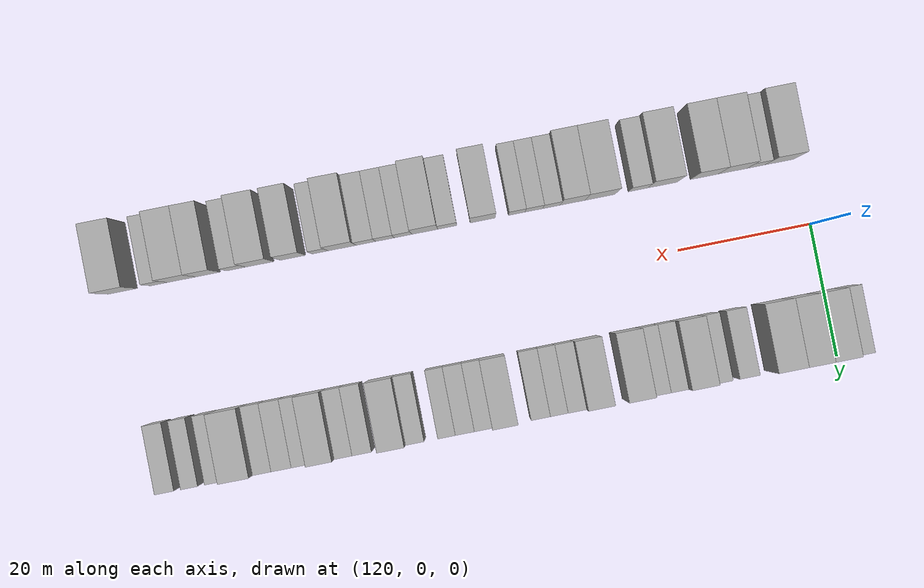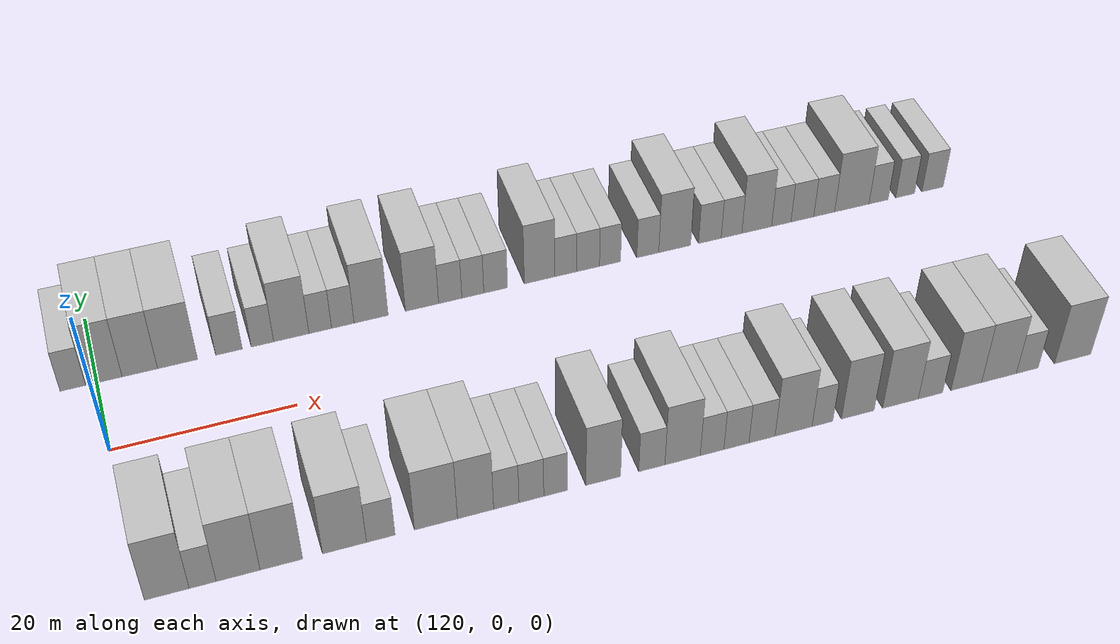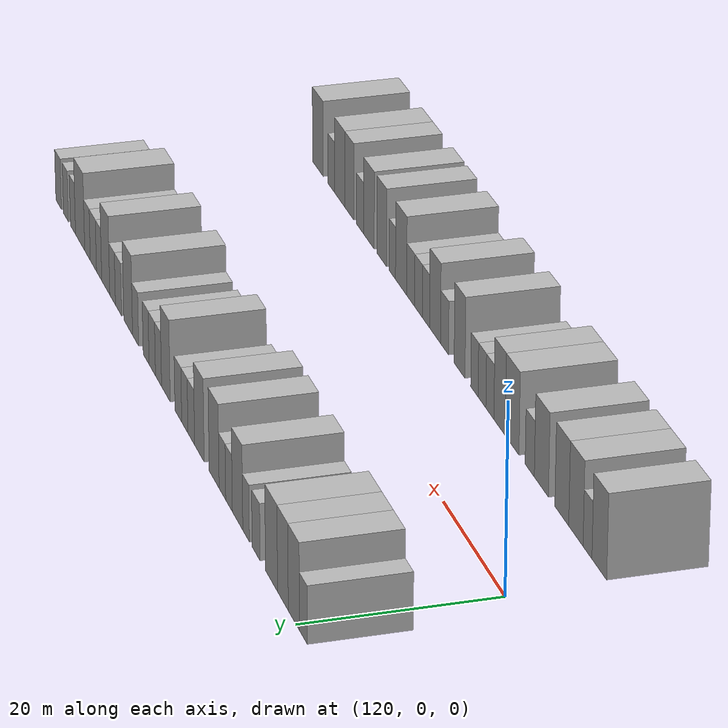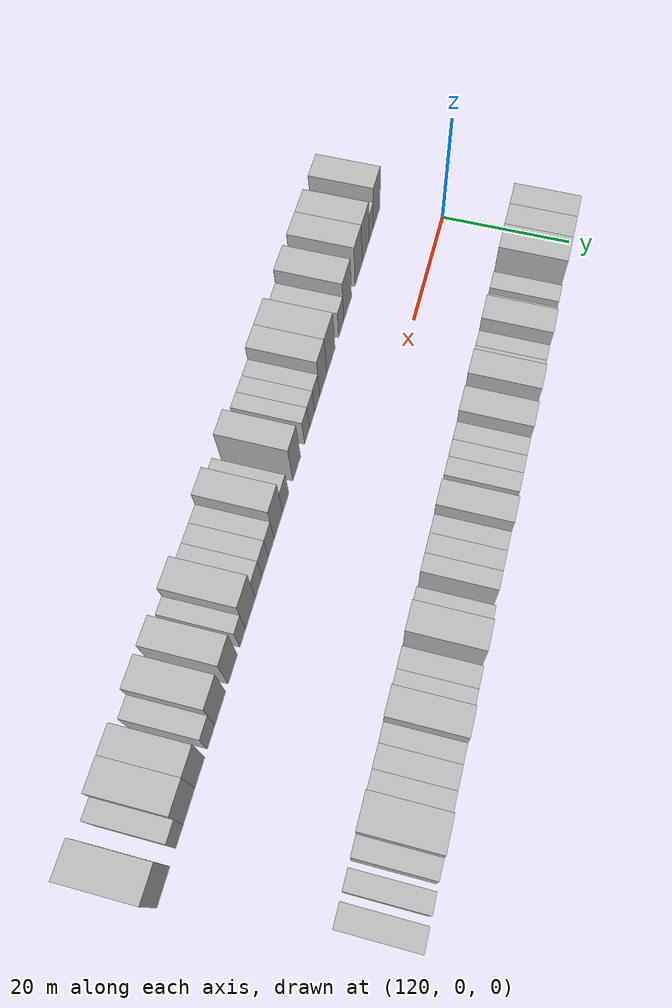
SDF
<sdf version="1.6">
 <world name="default">
  <model name="building_31">
   <static>1</static>
   <pose>117.4507 15.0000 0 0.000000 0.000000 1.570796</pose>
   <link name="link">
    <pose>0 0 3.00 0 0 0</pose>
    <collision name="collision"><geometry><box><size>10.0000 2.7305 6.0000</size></box></geometry></collision>
    <visual name="visual">
     <cast_shadows>0</cast_shadows>
     <geometry><box><size>10.0000 2.7305 6.0000</size></box></geometry>
     <material>
      <script>
       <uri>model://HANNAS_wall/materials/scripts</uri>
       <uri>model://HANNAS_wall/materials/textures</uri>
       <name>vrc/HANNAS_wall</name>
      </script>
     </material>
    </visual>
   </link>
  </model>
  <model name="building_32">
   <static>1</static>
   <pose>120.7867 15.0000 0 0.000000 0.000000 1.570796</pose>
   <link name="link">
    <pose>0 0 4.50 0 0 0</pose>
    <collision name="collision"><geometry><box><size>10.0000 3.9415 9.0000</size></box></geometry></collision>
    <visual name="visual">
     <cast_shadows>0</cast_shadows>
     <geometry><box><size>10.0000 3.9415 9.0000</size></box></geometry>
     <material>
      <script>
       <uri>model://HANNAS_wall/materials/scripts</uri>
       <uri>model://HANNAS_wall/materials/textures</uri>
       <name>vrc/HANNAS_wall</name>
      </script>
     </material>
    </visual>
   </link>
  </model>
  <model name="building_33">
   <static>1</static>
   <pose>124.6819 15.0000 0 0.000000 0.000000 1.570796</pose>
   <link name="link">
    <pose>0 0 4.50 0 0 0</pose>
    <collision name="collision"><geometry><box><size>10.0000 3.8489 9.0000</size></box></geometry></collision>
    <visual name="visual">
     <cast_shadows>0</cast_shadows>
     <geometry><box><size>10.0000 3.8489 9.0000</size></box></geometry>
     <material>
      <script>
       <uri>model://HANNAS_wall/materials/scripts</uri>
       <uri>model://HANNAS_wall/materials/textures</uri>
       <name>vrc/HANNAS_wall</name>
      </script>
     </material>
    </visual>
   </link>
  </model>
  <model name="building_34">
   <static>1</static>
   <pose>128.7969 15.0000 0 0.000000 0.000000 1.570796</pose>
   <link name="link">
    <pose>0 0 4.50 0 0 0</pose>
    <collision name="collision"><geometry><box><size>10.0000 4.3810 9.0000</size></box></geometry></collision>
    <visual name="visual">
     <cast_shadows>0</cast_shadows>
     <geometry><box><size>10.0000 4.3810 9.0000</size></box></geometry>
     <material>
      <script>
       <uri>model://HANNAS_wall/materials/scripts</uri>
       <uri>model://HANNAS_wall/materials/textures</uri>
       <name>vrc/HANNAS_wall</name>
      </script>
     </material>
    </visual>
   </link>
  </model>
  <model name="building_35">
   <static>1</static>
   <pose>134.4684 15.0000 0 0.000000 0.000000 1.570796</pose>
   <link name="link">
    <pose>0 0 3.00 0 0 0</pose>
    <collision name="collision"><geometry><box><size>10.0000 2.9619 6.0000</size></box></geometry></collision>
    <visual name="visual">
     <cast_shadows>0</cast_shadows>
     <geometry><box><size>10.0000 2.9619 6.0000</size></box></geometry>
     <material>
      <script>
       <uri>model://HANNAS_wall/materials/scripts</uri>
       <uri>model://HANNAS_wall/materials/textures</uri>
       <name>vrc/HANNAS_wall</name>
      </script>
     </material>
    </visual>
   </link>
  </model>
  <model name="building_36">
   <static>1</static>
   <pose>138.2059 15.0000 0 0.000000 0.000000 1.570796</pose>
   <link name="link">
    <pose>0 0 3.00 0 0 0</pose>
    <collision name="collision"><geometry><box><size>10.0000 2.5131 6.0000</size></box></geometry></collision>
    <visual name="visual">
     <cast_shadows>0</cast_shadows>
     <geometry><box><size>10.0000 2.5131 6.0000</size></box></geometry>
     <material>
      <script>
       <uri>model://HANNAS_wall/materials/scripts</uri>
       <uri>model://HANNAS_wall/materials/textures</uri>
       <name>vrc/HANNAS_wall</name>
      </script>
     </material>
    </visual>
   </link>
  </model>
  <model name="building_37">
   <static>1</static>
   <pose>141.4573 15.0000 0 0.000000 0.000000 1.570796</pose>
   <link name="link">
    <pose>0 0 4.50 0 0 0</pose>
    <collision name="collision"><geometry><box><size>10.0000 3.9897 9.0000</size></box></geometry></collision>
    <visual name="visual">
     <cast_shadows>0</cast_shadows>
     <geometry><box><size>10.0000 3.9897 9.0000</size></box></geometry>
     <material>
      <script>
       <uri>model://HANNAS_wall/materials/scripts</uri>
       <uri>model://HANNAS_wall/materials/textures</uri>
       <name>vrc/HANNAS_wall</name>
      </script>
     </material>
    </visual>
   </link>
  </model>
  <model name="building_38">
   <static>1</static>
   <pose>144.7372 15.0000 0 0.000000 0.000000 1.570796</pose>
   <link name="link">
    <pose>0 0 3.00 0 0 0</pose>
    <collision name="collision"><geometry><box><size>10.0000 2.5700 6.0000</size></box></geometry></collision>
    <visual name="visual">
     <cast_shadows>0</cast_shadows>
     <geometry><box><size>10.0000 2.5700 6.0000</size></box></geometry>
     <material>
      <script>
       <uri>model://HANNAS_wall/materials/scripts</uri>
       <uri>model://HANNAS_wall/materials/textures</uri>
       <name>vrc/HANNAS_wall</name>
      </script>
     </material>
    </visual>
   </link>
  </model>
  <model name="building_39">
   <static>1</static>
   <pose>147.3090 15.0000 0 0.000000 0.000000 1.570796</pose>
   <link name="link">
    <pose>0 0 3.00 0 0 0</pose>
    <collision name="collision"><geometry><box><size>10.0000 2.5736 6.0000</size></box></geometry></collision>
    <visual name="visual">
     <cast_shadows>0</cast_shadows>
     <geometry><box><size>10.0000 2.5736 6.0000</size></box></geometry>
     <material>
      <script>
       <uri>model://HANNAS_wall/materials/scripts</uri>
       <uri>model://HANNAS_wall/materials/textures</uri>
       <name>vrc/HANNAS_wall</name>
      </script>
     </material>
    </visual>
   </link>
  </model>
  <model name="building_40">
   <static>1</static>
   <pose>150.5536 15.0000 0 0.000000 0.000000 1.570796</pose>
   <link name="link">
    <pose>0 0 4.50 0 0 0</pose>
    <collision name="collision"><geometry><box><size>10.0000 3.9157 9.0000</size></box></geometry></collision>
    <visual name="visual">
     <cast_shadows>0</cast_shadows>
     <geometry><box><size>10.0000 3.9157 9.0000</size></box></geometry>
     <material>
      <script>
       <uri>model://HANNAS_wall/materials/scripts</uri>
       <uri>model://HANNAS_wall/materials/textures</uri>
       <name>vrc/HANNAS_wall</name>
      </script>
     </material>
    </visual>
   </link>
  </model>
  <model name="building_41">
   <static>1</static>
   <pose>156.4536 15.0000 0 0.000000 0.000000 1.570796</pose>
   <link name="link">
    <pose>0 0 4.50 0 0 0</pose>
    <collision name="collision"><geometry><box><size>10.0000 3.8843 9.0000</size></box></geometry></collision>
    <visual name="visual">
     <cast_shadows>0</cast_shadows>
     <geometry><box><size>10.0000 3.8843 9.0000</size></box></geometry>
     <material>
      <script>
       <uri>model://HANNAS_wall/materials/scripts</uri>
       <uri>model://HANNAS_wall/materials/textures</uri>
       <name>vrc/HANNAS_wall</name>
      </script>
     </material>
    </visual>
   </link>
  </model>
  <model name="building_42">
   <static>1</static>
   <pose>159.7617 15.0000 0 0.000000 0.000000 1.570796</pose>
   <link name="link">
    <pose>0 0 3.00 0 0 0</pose>
    <collision name="collision"><geometry><box><size>10.0000 2.7318 6.0000</size></box></geometry></collision>
    <visual name="visual">
     <cast_shadows>0</cast_shadows>
     <geometry><box><size>10.0000 2.7318 6.0000</size></box></geometry>
     <material>
      <script>
       <uri>model://HANNAS_wall/materials/scripts</uri>
       <uri>model://HANNAS_wall/materials/textures</uri>
       <name>vrc/HANNAS_wall</name>
      </script>
     </material>
    </visual>
   </link>
  </model>
  <model name="building_43">
   <static>1</static>
   <pose>162.4258 15.0000 0 0.000000 0.000000 1.570796</pose>
   <link name="link">
    <pose>0 0 3.00 0 0 0</pose>
    <collision name="collision"><geometry><box><size>10.0000 2.5965 6.0000</size></box></geometry></collision>
    <visual name="visual">
     <cast_shadows>0</cast_shadows>
     <geometry><box><size>10.0000 2.5965 6.0000</size></box></geometry>
     <material>
      <script>
       <uri>model://HANNAS_wall/materials/scripts</uri>
       <uri>model://HANNAS_wall/materials/textures</uri>
       <name>vrc/HANNAS_wall</name>
      </script>
     </material>
    </visual>
   </link>
  </model>
  <model name="building_44">
   <static>1</static>
   <pose>165.1306 15.0000 0 0.000000 0.000000 1.570796</pose>
   <link name="link">
    <pose>0 0 3.00 0 0 0</pose>
    <collision name="collision"><geometry><box><size>10.0000 2.8132 6.0000</size></box></geometry></collision>
    <visual name="visual">
     <cast_shadows>0</cast_shadows>
     <geometry><box><size>10.0000 2.8132 6.0000</size></box></geometry>
     <material>
      <script>
       <uri>model://HANNAS_wall/materials/scripts</uri>
       <uri>model://HANNAS_wall/materials/textures</uri>
       <name>vrc/HANNAS_wall</name>
      </script>
     </material>
    </visual>
   </link>
  </model>
  <model name="building_45">
   <static>1</static>
   <pose>170.3809 15.0000 0 0.000000 0.000000 1.570796</pose>
   <link name="link">
    <pose>0 0 4.50 0 0 0</pose>
    <collision name="collision"><geometry><box><size>10.0000 3.6875 9.0000</size></box></geometry></collision>
    <visual name="visual">
     <cast_shadows>0</cast_shadows>
     <geometry><box><size>10.0000 3.6875 9.0000</size></box></geometry>
     <material>
      <script>
       <uri>model://HANNAS_wall/materials/scripts</uri>
       <uri>model://HANNAS_wall/materials/textures</uri>
       <name>vrc/HANNAS_wall</name>
      </script>
     </material>
    </visual>
   </link>
  </model>
  <model name="building_46">
   <static>1</static>
   <pose>173.5392 15.0000 0 0.000000 0.000000 1.570796</pose>
   <link name="link">
    <pose>0 0 3.00 0 0 0</pose>
    <collision name="collision"><geometry><box><size>10.0000 2.6291 6.0000</size></box></geometry></collision>
    <visual name="visual">
     <cast_shadows>0</cast_shadows>
     <geometry><box><size>10.0000 2.6291 6.0000</size></box></geometry>
     <material>
      <script>
       <uri>model://HANNAS_wall/materials/scripts</uri>
       <uri>model://HANNAS_wall/materials/textures</uri>
       <name>vrc/HANNAS_wall</name>
      </script>
     </material>
    </visual>
   </link>
  </model>
  <model name="building_47">
   <static>1</static>
   <pose>176.2488 15.0000 0 0.000000 0.000000 1.570796</pose>
   <link name="link">
    <pose>0 0 3.00 0 0 0</pose>
    <collision name="collision"><geometry><box><size>10.0000 2.7902 6.0000</size></box></geometry></collision>
    <visual name="visual">
     <cast_shadows>0</cast_shadows>
     <geometry><box><size>10.0000 2.7902 6.0000</size></box></geometry>
     <material>
      <script>
       <uri>model://HANNAS_wall/materials/scripts</uri>
       <uri>model://HANNAS_wall/materials/textures</uri>
       <name>vrc/HANNAS_wall</name>
      </script>
     </material>
    </visual>
   </link>
  </model>
  <model name="building_48">
   <static>1</static>
   <pose>178.9324 15.0000 0 0.000000 0.000000 1.570796</pose>
   <link name="link">
    <pose>0 0 3.00 0 0 0</pose>
    <collision name="collision"><geometry><box><size>10.0000 2.5769 6.0000</size></box></geometry></collision>
    <visual name="visual">
     <cast_shadows>0</cast_shadows>
     <geometry><box><size>10.0000 2.5769 6.0000</size></box></geometry>
     <material>
      <script>
       <uri>model://HANNAS_wall/materials/scripts</uri>
       <uri>model://HANNAS_wall/materials/textures</uri>
       <name>vrc/HANNAS_wall</name>
      </script>
     </material>
    </visual>
   </link>
  </model>
  <model name="building_49">
   <static>1</static>
   <pose>183.5829 15.0000 0 0.000000 0.000000 1.570796</pose>
   <link name="link">
    <pose>0 0 3.00 0 0 0</pose>
    <collision name="collision"><geometry><box><size>10.0000 2.7243 6.0000</size></box></geometry></collision>
    <visual name="visual">
     <cast_shadows>0</cast_shadows>
     <geometry><box><size>10.0000 2.7243 6.0000</size></box></geometry>
     <material>
      <script>
       <uri>model://HANNAS_wall/materials/scripts</uri>
       <uri>model://HANNAS_wall/materials/textures</uri>
       <name>vrc/HANNAS_wall</name>
      </script>
     </material>
    </visual>
   </link>
  </model>
  <model name="building_50">
   <static>1</static>
   <pose>186.9273 15.0000 0 0.000000 0.000000 1.570796</pose>
   <link name="link">
    <pose>0 0 4.50 0 0 0</pose>
    <collision name="collision"><geometry><box><size>10.0000 3.9645 9.0000</size></box></geometry></collision>
    <visual name="visual">
     <cast_shadows>0</cast_shadows>
     <geometry><box><size>10.0000 3.9645 9.0000</size></box></geometry>
     <material>
      <script>
       <uri>model://HANNAS_wall/materials/scripts</uri>
       <uri>model://HANNAS_wall/materials/textures</uri>
       <name>vrc/HANNAS_wall</name>
      </script>
     </material>
    </visual>
   </link>
  </model>
  <model name="building_51">
   <static>1</static>
   <pose>191.3352 15.0000 0 0.000000 0.000000 1.570796</pose>
   <link name="link">
    <pose>0 0 3.00 0 0 0</pose>
    <collision name="collision"><geometry><box><size>10.0000 2.8514 6.0000</size></box></geometry></collision>
    <visual name="visual">
     <cast_shadows>0</cast_shadows>
     <geometry><box><size>10.0000 2.8514 6.0000</size></box></geometry>
     <material>
      <script>
       <uri>model://HANNAS_wall/materials/scripts</uri>
       <uri>model://HANNAS_wall/materials/textures</uri>
       <name>vrc/HANNAS_wall</name>
      </script>
     </material>
    </visual>
   </link>
  </model>
  <model name="building_52">
   <static>1</static>
   <pose>194.0658 15.0000 0 0.000000 0.000000 1.570796</pose>
   <link name="link">
    <pose>0 0 3.00 0 0 0</pose>
    <collision name="collision"><geometry><box><size>10.0000 2.6098 6.0000</size></box></geometry></collision>
    <visual name="visual">
     <cast_shadows>0</cast_shadows>
     <geometry><box><size>10.0000 2.6098 6.0000</size></box></geometry>
     <material>
      <script>
       <uri>model://HANNAS_wall/materials/scripts</uri>
       <uri>model://HANNAS_wall/materials/textures</uri>
       <name>vrc/HANNAS_wall</name>
      </script>
     </material>
    </visual>
   </link>
  </model>
  <model name="building_53">
   <static>1</static>
   <pose>197.2658 15.0000 0 0.000000 0.000000 1.570796</pose>
   <link name="link">
    <pose>0 0 4.50 0 0 0</pose>
    <collision name="collision"><geometry><box><size>10.0000 3.7900 9.0000</size></box></geometry></collision>
    <visual name="visual">
     <cast_shadows>0</cast_shadows>
     <geometry><box><size>10.0000 3.7900 9.0000</size></box></geometry>
     <material>
      <script>
       <uri>model://HANNAS_wall/materials/scripts</uri>
       <uri>model://HANNAS_wall/materials/textures</uri>
       <name>vrc/HANNAS_wall</name>
      </script>
     </material>
    </visual>
   </link>
  </model>
  <model name="building_54">
   <static>1</static>
   <pose>200.4045 15.0000 0 0.000000 0.000000 1.570796</pose>
   <link name="link">
    <pose>0 0 3.00 0 0 0</pose>
    <collision name="collision"><geometry><box><size>10.0000 2.4874 6.0000</size></box></geometry></collision>
    <visual name="visual">
     <cast_shadows>0</cast_shadows>
     <geometry><box><size>10.0000 2.4874 6.0000</size></box></geometry>
     <material>
      <script>
       <uri>model://HANNAS_wall/materials/scripts</uri>
       <uri>model://HANNAS_wall/materials/textures</uri>
       <name>vrc/HANNAS_wall</name>
      </script>
     </material>
    </visual>
   </link>
  </model>
  <model name="building_55">
   <static>1</static>
   <pose>203.1226 15.0000 0 0.000000 0.000000 1.570796</pose>
   <link name="link">
    <pose>0 0 3.00 0 0 0</pose>
    <collision name="collision"><geometry><box><size>10.0000 2.9488 6.0000</size></box></geometry></collision>
    <visual name="visual">
     <cast_shadows>0</cast_shadows>
     <geometry><box><size>10.0000 2.9488 6.0000</size></box></geometry>
     <material>
      <script>
       <uri>model://HANNAS_wall/materials/scripts</uri>
       <uri>model://HANNAS_wall/materials/textures</uri>
       <name>vrc/HANNAS_wall</name>
      </script>
     </material>
    </visual>
   </link>
  </model>
  <model name="building_56">
   <static>1</static>
   <pose>205.9491 15.0000 0 0.000000 0.000000 1.570796</pose>
   <link name="link">
    <pose>0 0 3.00 0 0 0</pose>
    <collision name="collision"><geometry><box><size>10.0000 2.7042 6.0000</size></box></geometry></collision>
    <visual name="visual">
     <cast_shadows>0</cast_shadows>
     <geometry><box><size>10.0000 2.7042 6.0000</size></box></geometry>
     <material>
      <script>
       <uri>model://HANNAS_wall/materials/scripts</uri>
       <uri>model://HANNAS_wall/materials/textures</uri>
       <name>vrc/HANNAS_wall</name>
      </script>
     </material>
    </visual>
   </link>
  </model>
  <model name="building_57">
   <static>1</static>
   <pose>209.5503 15.0000 0 0.000000 0.000000 1.570796</pose>
   <link name="link">
    <pose>0 0 4.50 0 0 0</pose>
    <collision name="collision"><geometry><box><size>10.0000 4.4981 9.0000</size></box></geometry></collision>
    <visual name="visual">
     <cast_shadows>0</cast_shadows>
     <geometry><box><size>10.0000 4.4981 9.0000</size></box></geometry>
     <material>
      <script>
       <uri>model://HANNAS_wall/materials/scripts</uri>
       <uri>model://HANNAS_wall/materials/textures</uri>
       <name>vrc/HANNAS_wall</name>
      </script>
     </material>
    </visual>
   </link>
  </model>
  <model name="building_58">
   <static>1</static>
   <pose>213.0587 15.0000 0 0.000000 0.000000 1.570796</pose>
   <link name="link">
    <pose>0 0 3.00 0 0 0</pose>
    <collision name="collision"><geometry><box><size>10.0000 2.5187 6.0000</size></box></geometry></collision>
    <visual name="visual">
     <cast_shadows>0</cast_shadows>
     <geometry><box><size>10.0000 2.5187 6.0000</size></box></geometry>
     <material>
      <script>
       <uri>model://HANNAS_wall/materials/scripts</uri>
       <uri>model://HANNAS_wall/materials/textures</uri>
       <name>vrc/HANNAS_wall</name>
      </script>
     </material>
    </visual>
   </link>
  </model>
  <model name="building_59">
   <static>1</static>
   <pose>216.5635 15.0000 0 0.000000 0.000000 1.570796</pose>
   <link name="link">
    <pose>0 0 3.00 0 0 0</pose>
    <collision name="collision"><geometry><box><size>10.0000 2.4909 6.0000</size></box></geometry></collision>
    <visual name="visual">
     <cast_shadows>0</cast_shadows>
     <geometry><box><size>10.0000 2.4909 6.0000</size></box></geometry>
     <material>
      <script>
       <uri>model://HANNAS_wall/materials/scripts</uri>
       <uri>model://HANNAS_wall/materials/textures</uri>
       <name>vrc/HANNAS_wall</name>
      </script>
     </material>
    </visual>
   </link>
  </model>
  <model name="building_60">
   <static>1</static>
   <pose>220.2247 15.0000 0 0.000000 0.000000 1.570796</pose>
   <link name="link">
    <pose>0 0 3.00 0 0 0</pose>
    <collision name="collision"><geometry><box><size>10.0000 2.8314 6.0000</size></box></geometry></collision>
    <visual name="visual">
     <cast_shadows>0</cast_shadows>
     <geometry><box><size>10.0000 2.8314 6.0000</size></box></geometry>
     <material>
      <script>
       <uri>model://HANNAS_wall/materials/scripts</uri>
       <uri>model://HANNAS_wall/materials/textures</uri>
       <name>vrc/HANNAS_wall</name>
      </script>
     </material>
    </visual>
   </link>
  </model>
  <model name="building_87">
   <static>1</static>
   <pose>122.7505 -15.0000 0 0.000000 0.000000 1.570796</pose>
   <link name="link">
    <pose>0 0 4.50 0 0 0</pose>
    <collision name="collision"><geometry><box><size>10.0000 4.3677 9.0000</size></box></geometry></collision>
    <visual name="visual">
     <cast_shadows>0</cast_shadows>
     <geometry><box><size>10.0000 4.3677 9.0000</size></box></geometry>
     <material>
      <script>
       <uri>model://HANNAS_wall/materials/scripts</uri>
       <uri>model://HANNAS_wall/materials/textures</uri>
       <name>vrc/HANNAS_wall</name>
      </script>
     </material>
    </visual>
   </link>
  </model>
  <model name="building_88">
   <static>1</static>
   <pose>126.2627 -15.0000 0 0.000000 0.000000 1.570796</pose>
   <link name="link">
    <pose>0 0 3.00 0 0 0</pose>
    <collision name="collision"><geometry><box><size>10.0000 2.6568 6.0000</size></box></geometry></collision>
    <visual name="visual">
     <cast_shadows>0</cast_shadows>
     <geometry><box><size>10.0000 2.6568 6.0000</size></box></geometry>
     <material>
      <script>
       <uri>model://HANNAS_wall/materials/scripts</uri>
       <uri>model://HANNAS_wall/materials/textures</uri>
       <name>vrc/HANNAS_wall</name>
      </script>
     </material>
    </visual>
   </link>
  </model>
  <model name="building_89">
   <static>1</static>
   <pose>129.7688 -15.0000 0 0.000000 0.000000 1.570796</pose>
   <link name="link">
    <pose>0 0 4.50 0 0 0</pose>
    <collision name="collision"><geometry><box><size>10.0000 4.3553 9.0000</size></box></geometry></collision>
    <visual name="visual">
     <cast_shadows>0</cast_shadows>
     <geometry><box><size>10.0000 4.3553 9.0000</size></box></geometry>
     <material>
      <script>
       <uri>model://HANNAS_wall/materials/scripts</uri>
       <uri>model://HANNAS_wall/materials/textures</uri>
       <name>vrc/HANNAS_wall</name>
      </script>
     </material>
    </visual>
   </link>
  </model>
  <model name="building_90">
   <static>1</static>
   <pose>134.0827 -15.0000 0 0.000000 0.000000 1.570796</pose>
   <link name="link">
    <pose>0 0 4.50 0 0 0</pose>
    <collision name="collision"><geometry><box><size>10.0000 4.2727 9.0000</size></box></geometry></collision>
    <visual name="visual">
     <cast_shadows>0</cast_shadows>
     <geometry><box><size>10.0000 4.2727 9.0000</size></box></geometry>
     <material>
      <script>
       <uri>model://HANNAS_wall/materials/scripts</uri>
       <uri>model://HANNAS_wall/materials/textures</uri>
       <name>vrc/HANNAS_wall</name>
      </script>
     </material>
    </visual>
   </link>
  </model>
  <model name="building_91">
   <static>1</static>
   <pose>140.4590 -15.0000 0 0.000000 0.000000 1.570796</pose>
   <link name="link">
    <pose>0 0 4.50 0 0 0</pose>
    <collision name="collision"><geometry><box><size>10.0000 4.4799 9.0000</size></box></geometry></collision>
    <visual name="visual">
     <cast_shadows>0</cast_shadows>
     <geometry><box><size>10.0000 4.4799 9.0000</size></box></geometry>
     <material>
      <script>
       <uri>model://HANNAS_wall/materials/scripts</uri>
       <uri>model://HANNAS_wall/materials/textures</uri>
       <name>vrc/HANNAS_wall</name>
      </script>
     </material>
    </visual>
   </link>
  </model>
  <model name="building_92">
   <static>1</static>
   <pose>144.1731 -15.0000 0 0.000000 0.000000 1.570796</pose>
   <link name="link">
    <pose>0 0 3.00 0 0 0</pose>
    <collision name="collision"><geometry><box><size>10.0000 2.9483 6.0000</size></box></geometry></collision>
    <visual name="visual">
     <cast_shadows>0</cast_shadows>
     <geometry><box><size>10.0000 2.9483 6.0000</size></box></geometry>
     <material>
      <script>
       <uri>model://HANNAS_wall/materials/scripts</uri>
       <uri>model://HANNAS_wall/materials/textures</uri>
       <name>vrc/HANNAS_wall</name>
      </script>
     </material>
    </visual>
   </link>
  </model>
  <model name="building_93">
   <static>1</static>
   <pose>149.8913 -15.0000 0 0.000000 0.000000 1.570796</pose>
   <link name="link">
    <pose>0 0 4.50 0 0 0</pose>
    <collision name="collision"><geometry><box><size>10.0000 4.4880 9.0000</size></box></geometry></collision>
    <visual name="visual">
     <cast_shadows>0</cast_shadows>
     <geometry><box><size>10.0000 4.4880 9.0000</size></box></geometry>
     <material>
      <script>
       <uri>model://HANNAS_wall/materials/scripts</uri>
       <uri>model://HANNAS_wall/materials/textures</uri>
       <name>vrc/HANNAS_wall</name>
      </script>
     </material>
    </visual>
   </link>
  </model>
  <model name="building_94">
   <static>1</static>
   <pose>154.0439 -15.0000 0 0.000000 0.000000 1.570796</pose>
   <link name="link">
    <pose>0 0 4.50 0 0 0</pose>
    <collision name="collision"><geometry><box><size>10.0000 3.8172 9.0000</size></box></geometry></collision>
    <visual name="visual">
     <cast_shadows>0</cast_shadows>
     <geometry><box><size>10.0000 3.8172 9.0000</size></box></geometry>
     <material>
      <script>
       <uri>model://HANNAS_wall/materials/scripts</uri>
       <uri>model://HANNAS_wall/materials/textures</uri>
       <name>vrc/HANNAS_wall</name>
      </script>
     </material>
    </visual>
   </link>
  </model>
  <model name="building_95">
   <static>1</static>
   <pose>157.2957 -15.0000 0 0.000000 0.000000 1.570796</pose>
   <link name="link">
    <pose>0 0 3.00 0 0 0</pose>
    <collision name="collision"><geometry><box><size>10.0000 2.6863 6.0000</size></box></geometry></collision>
    <visual name="visual">
     <cast_shadows>0</cast_shadows>
     <geometry><box><size>10.0000 2.6863 6.0000</size></box></geometry>
     <material>
      <script>
       <uri>model://HANNAS_wall/materials/scripts</uri>
       <uri>model://HANNAS_wall/materials/textures</uri>
       <name>vrc/HANNAS_wall</name>
      </script>
     </material>
    </visual>
   </link>
  </model>
  <model name="building_96">
   <static>1</static>
   <pose>159.9669 -15.0000 0 0.000000 0.000000 1.570796</pose>
   <link name="link">
    <pose>0 0 3.00 0 0 0</pose>
    <collision name="collision"><geometry><box><size>10.0000 2.6561 6.0000</size></box></geometry></collision>
    <visual name="visual">
     <cast_shadows>0</cast_shadows>
     <geometry><box><size>10.0000 2.6561 6.0000</size></box></geometry>
     <material>
      <script>
       <uri>model://HANNAS_wall/materials/scripts</uri>
       <uri>model://HANNAS_wall/materials/textures</uri>
       <name>vrc/HANNAS_wall</name>
      </script>
     </material>
    </visual>
   </link>
  </model>
  <model name="building_97">
   <static>1</static>
   <pose>162.5588 -15.0000 0 0.000000 0.000000 1.570796</pose>
   <link name="link">
    <pose>0 0 3.00 0 0 0</pose>
    <collision name="collision"><geometry><box><size>10.0000 2.5278 6.0000</size></box></geometry></collision>
    <visual name="visual">
     <cast_shadows>0</cast_shadows>
     <geometry><box><size>10.0000 2.5278 6.0000</size></box></geometry>
     <material>
      <script>
       <uri>model://HANNAS_wall/materials/scripts</uri>
       <uri>model://HANNAS_wall/materials/textures</uri>
       <name>vrc/HANNAS_wall</name>
      </script>
     </material>
    </visual>
   </link>
  </model>
  <model name="building_98">
   <static>1</static>
   <pose>167.7188 -15.0000 0 0.000000 0.000000 1.570796</pose>
   <link name="link">
    <pose>0 0 4.50 0 0 0</pose>
    <collision name="collision"><geometry><box><size>10.0000 3.7923 9.0000</size></box></geometry></collision>
    <visual name="visual">
     <cast_shadows>0</cast_shadows>
     <geometry><box><size>10.0000 3.7923 9.0000</size></box></geometry>
     <material>
      <script>
       <uri>model://HANNAS_wall/materials/scripts</uri>
       <uri>model://HANNAS_wall/materials/textures</uri>
       <name>vrc/HANNAS_wall</name>
      </script>
     </material>
    </visual>
   </link>
  </model>
  <model name="building_99">
   <static>1</static>
   <pose>173.0561 -15.0000 0 0.000000 0.000000 1.570796</pose>
   <link name="link">
    <pose>0 0 3.00 0 0 0</pose>
    <collision name="collision"><geometry><box><size>10.0000 2.8822 6.0000</size></box></geometry></collision>
    <visual name="visual">
     <cast_shadows>0</cast_shadows>
     <geometry><box><size>10.0000 2.8822 6.0000</size></box></geometry>
     <material>
      <script>
       <uri>model://HANNAS_wall/materials/scripts</uri>
       <uri>model://HANNAS_wall/materials/textures</uri>
       <name>vrc/HANNAS_wall</name>
      </script>
     </material>
    </visual>
   </link>
  </model>
  <model name="building_100">
   <static>1</static>
   <pose>176.4670 -15.0000 0 0.000000 0.000000 1.570796</pose>
   <link name="link">
    <pose>0 0 4.50 0 0 0</pose>
    <collision name="collision"><geometry><box><size>10.0000 3.9397 9.0000</size></box></geometry></collision>
    <visual name="visual">
     <cast_shadows>0</cast_shadows>
     <geometry><box><size>10.0000 3.9397 9.0000</size></box></geometry>
     <material>
      <script>
       <uri>model://HANNAS_wall/materials/scripts</uri>
       <uri>model://HANNAS_wall/materials/textures</uri>
       <name>vrc/HANNAS_wall</name>
      </script>
     </material>
    </visual>
   </link>
  </model>
  <model name="building_101">
   <static>1</static>
   <pose>179.7580 -15.0000 0 0.000000 0.000000 1.570796</pose>
   <link name="link">
    <pose>0 0 3.00 0 0 0</pose>
    <collision name="collision"><geometry><box><size>10.0000 2.6423 6.0000</size></box></geometry></collision>
    <visual name="visual">
     <cast_shadows>0</cast_shadows>
     <geometry><box><size>10.0000 2.6423 6.0000</size></box></geometry>
     <material>
      <script>
       <uri>model://HANNAS_wall/materials/scripts</uri>
       <uri>model://HANNAS_wall/materials/textures</uri>
       <name>vrc/HANNAS_wall</name>
      </script>
     </material>
    </visual>
   </link>
  </model>
  <model name="building_102">
   <static>1</static>
   <pose>182.4958 -15.0000 0 0.000000 0.000000 1.570796</pose>
   <link name="link">
    <pose>0 0 3.00 0 0 0</pose>
    <collision name="collision"><geometry><box><size>10.0000 2.8333 6.0000</size></box></geometry></collision>
    <visual name="visual">
     <cast_shadows>0</cast_shadows>
     <geometry><box><size>10.0000 2.8333 6.0000</size></box></geometry>
     <material>
      <script>
       <uri>model://HANNAS_wall/materials/scripts</uri>
       <uri>model://HANNAS_wall/materials/textures</uri>
       <name>vrc/HANNAS_wall</name>
      </script>
     </material>
    </visual>
   </link>
  </model>
  <model name="building_103">
   <static>1</static>
   <pose>185.3948 -15.0000 0 0.000000 0.000000 1.570796</pose>
   <link name="link">
    <pose>0 0 3.00 0 0 0</pose>
    <collision name="collision"><geometry><box><size>10.0000 2.9648 6.0000</size></box></geometry></collision>
    <visual name="visual">
     <cast_shadows>0</cast_shadows>
     <geometry><box><size>10.0000 2.9648 6.0000</size></box></geometry>
     <material>
      <script>
       <uri>model://HANNAS_wall/materials/scripts</uri>
       <uri>model://HANNAS_wall/materials/textures</uri>
       <name>vrc/HANNAS_wall</name>
      </script>
     </material>
    </visual>
   </link>
  </model>
  <model name="building_104">
   <static>1</static>
   <pose>188.9987 -15.0000 0 0.000000 0.000000 1.570796</pose>
   <link name="link">
    <pose>0 0 4.50 0 0 0</pose>
    <collision name="collision"><geometry><box><size>10.0000 4.2431 9.0000</size></box></geometry></collision>
    <visual name="visual">
     <cast_shadows>0</cast_shadows>
     <geometry><box><size>10.0000 4.2431 9.0000</size></box></geometry>
     <material>
      <script>
       <uri>model://HANNAS_wall/materials/scripts</uri>
       <uri>model://HANNAS_wall/materials/textures</uri>
       <name>vrc/HANNAS_wall</name>
      </script>
     </material>
    </visual>
   </link>
  </model>
  <model name="building_105">
   <static>1</static>
   <pose>192.3229 -15.0000 0 0.000000 0.000000 1.570796</pose>
   <link name="link">
    <pose>0 0 3.00 0 0 0</pose>
    <collision name="collision"><geometry><box><size>10.0000 2.4051 6.0000</size></box></geometry></collision>
    <visual name="visual">
     <cast_shadows>0</cast_shadows>
     <geometry><box><size>10.0000 2.4051 6.0000</size></box></geometry>
     <material>
      <script>
       <uri>model://HANNAS_wall/materials/scripts</uri>
       <uri>model://HANNAS_wall/materials/textures</uri>
       <name>vrc/HANNAS_wall</name>
      </script>
     </material>
    </visual>
   </link>
  </model>
  <model name="building_106">
   <static>1</static>
   <pose>196.4271 -15.0000 0 0.000000 0.000000 1.570796</pose>
   <link name="link">
    <pose>0 0 4.50 0 0 0</pose>
    <collision name="collision"><geometry><box><size>10.0000 3.8033 9.0000</size></box></geometry></collision>
    <visual name="visual">
     <cast_shadows>0</cast_shadows>
     <geometry><box><size>10.0000 3.8033 9.0000</size></box></geometry>
     <material>
      <script>
       <uri>model://HANNAS_wall/materials/scripts</uri>
       <uri>model://HANNAS_wall/materials/textures</uri>
       <name>vrc/HANNAS_wall</name>
      </script>
     </material>
    </visual>
   </link>
  </model>
  <model name="building_107">
   <static>1</static>
   <pose>201.4361 -15.0000 0 0.000000 0.000000 1.570796</pose>
   <link name="link">
    <pose>0 0 4.50 0 0 0</pose>
    <collision name="collision"><geometry><box><size>10.0000 4.2147 9.0000</size></box></geometry></collision>
    <visual name="visual">
     <cast_shadows>0</cast_shadows>
     <geometry><box><size>10.0000 4.2147 9.0000</size></box></geometry>
     <material>
      <script>
       <uri>model://HANNAS_wall/materials/scripts</uri>
       <uri>model://HANNAS_wall/materials/textures</uri>
       <name>vrc/HANNAS_wall</name>
      </script>
     </material>
    </visual>
   </link>
  </model>
  <model name="building_108">
   <static>1</static>
   <pose>204.9939 -15.0000 0 0.000000 0.000000 1.570796</pose>
   <link name="link">
    <pose>0 0 3.00 0 0 0</pose>
    <collision name="collision"><geometry><box><size>10.0000 2.9010 6.0000</size></box></geometry></collision>
    <visual name="visual">
     <cast_shadows>0</cast_shadows>
     <geometry><box><size>10.0000 2.9010 6.0000</size></box></geometry>
     <material>
      <script>
       <uri>model://HANNAS_wall/materials/scripts</uri>
       <uri>model://HANNAS_wall/materials/textures</uri>
       <name>vrc/HANNAS_wall</name>
      </script>
     </material>
    </visual>
   </link>
  </model>
  <model name="building_109">
   <static>1</static>
   <pose>209.2825 -15.0000 0 0.000000 0.000000 1.570796</pose>
   <link name="link">
    <pose>0 0 4.50 0 0 0</pose>
    <collision name="collision"><geometry><box><size>10.0000 3.6761 9.0000</size></box></geometry></collision>
    <visual name="visual">
     <cast_shadows>0</cast_shadows>
     <geometry><box><size>10.0000 3.6761 9.0000</size></box></geometry>
     <material>
      <script>
       <uri>model://HANNAS_wall/materials/scripts</uri>
       <uri>model://HANNAS_wall/materials/textures</uri>
       <name>vrc/HANNAS_wall</name>
      </script>
     </material>
    </visual>
   </link>
  </model>
  <model name="building_110">
   <static>1</static>
   <pose>213.2285 -15.0000 0 0.000000 0.000000 1.570796</pose>
   <link name="link">
    <pose>0 0 4.50 0 0 0</pose>
    <collision name="collision"><geometry><box><size>10.0000 4.2161 9.0000</size></box></geometry></collision>
    <visual name="visual">
     <cast_shadows>0</cast_shadows>
     <geometry><box><size>10.0000 4.2161 9.0000</size></box></geometry>
     <material>
      <script>
       <uri>model://HANNAS_wall/materials/scripts</uri>
       <uri>model://HANNAS_wall/materials/textures</uri>
       <name>vrc/HANNAS_wall</name>
      </script>
     </material>
    </visual>
   </link>
  </model>
  <model name="building_111">
   <static>1</static>
   <pose>216.6727 -15.0000 0 0.000000 0.000000 1.570796</pose>
   <link name="link">
    <pose>0 0 3.00 0 0 0</pose>
    <collision name="collision"><geometry><box><size>10.0000 2.6724 6.0000</size></box></geometry></collision>
    <visual name="visual">
     <cast_shadows>0</cast_shadows>
     <geometry><box><size>10.0000 2.6724 6.0000</size></box></geometry>
     <material>
      <script>
       <uri>model://HANNAS_wall/materials/scripts</uri>
       <uri>model://HANNAS_wall/materials/textures</uri>
       <name>vrc/HANNAS_wall</name>
      </script>
     </material>
    </visual>
   </link>
  </model>
  <model name="building_112">
   <static>1</static>
   <pose>222.2518 -15.0000 0 0.000000 0.000000 1.570796</pose>
   <link name="link">
    <pose>0 0 4.50 0 0 0</pose>
    <collision name="collision"><geometry><box><size>10.0000 4.4858 9.0000</size></box></geometry></collision>
    <visual name="visual">
     <cast_shadows>0</cast_shadows>
     <geometry><box><size>10.0000 4.4858 9.0000</size></box></geometry>
     <material>
      <script>
       <uri>model://HANNAS_wall/materials/scripts</uri>
       <uri>model://HANNAS_wall/materials/textures</uri>
       <name>vrc/HANNAS_wall</name>
      </script>
     </material>
    </visual>
   </link>
  </model>
 </world>
</sdf>
